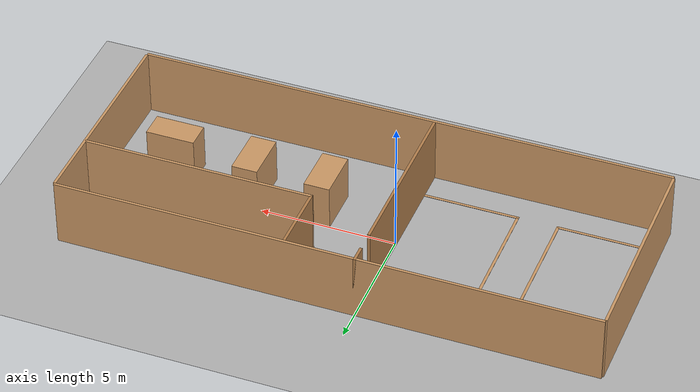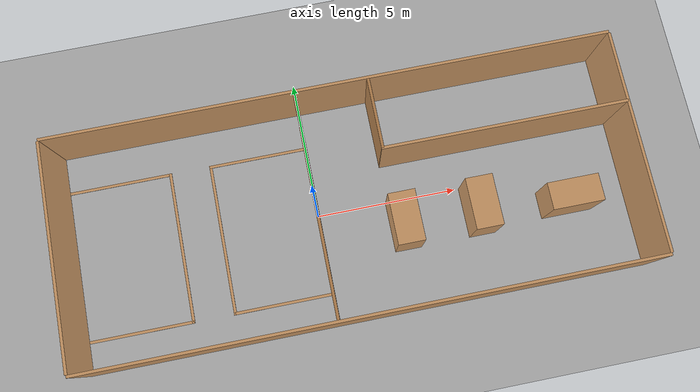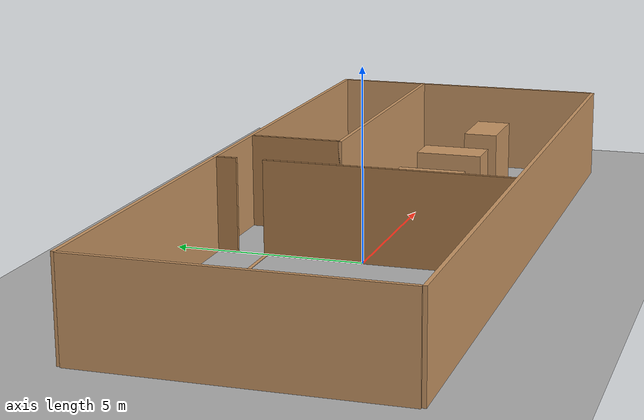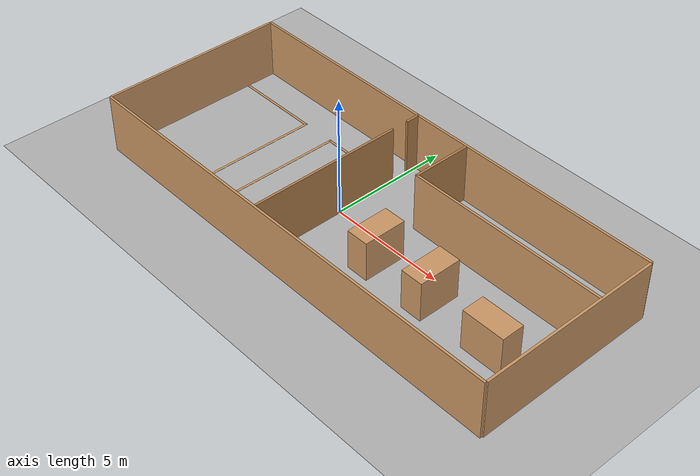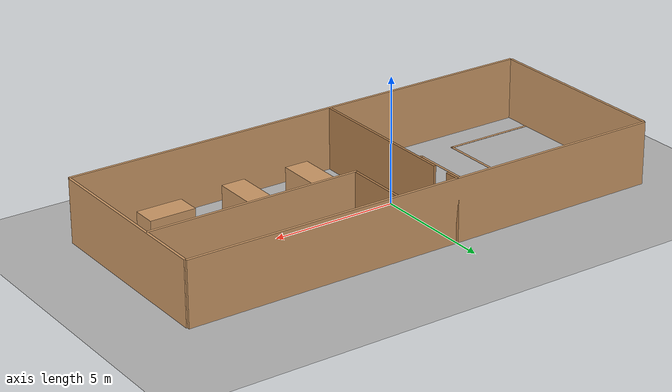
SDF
<sdf version="1.10">
 <world name="house_floor_plan">
  <physics name="1ms" type="ignored">
   <max_step_size>0.001</max_step_size>
   <real_time_factor>1</real_time_factor>
   <real_time_update_rate>1000</real_time_update_rate>
  </physics>
  <plugin name="gz::sim::systems::Physics" filename="gz-sim-physics-system"/>
  <plugin name="gz::sim::systems::UserCommands" filename="gz-sim-user-commands-system"/>
  <plugin name="gz::sim::systems::SceneBroadcaster" filename="gz-sim-scene-broadcaster-system"/>
  <plugin name="gz::sim::systems::Sensors" filename="gz-sim-sensors-system">
   <render_engine>ogre2</render_engine>
  </plugin>
  <scene>
   <ambient>0.400000006 0.400000006 0.400000006 1</ambient>
   <background>0.699999988 0.699999988 0.699999988 1</background>
   <shadows>true</shadows>
  </scene>
  <gravity>0 0 -9.8000000000000007</gravity>
  <magnetic_field>5.5644999999999998e-06 2.2875799999999999e-05 -4.2388400000000002e-05</magnetic_field>
  <atmosphere type="adiabatic"/>
  <model name="ground_plane">
   <static>true</static>
   <link name="link">
    <collision name="collision">
     <geometry><plane><normal>0 0 1</normal><size>100 100</size></plane></geometry>
     <surface><friction><ode><mu>100</mu><mu2>50</mu2></ode></friction></surface>
    </collision>
    <visual name="visual">
     <cast_shadows>false</cast_shadows>
     <geometry><plane><normal>0 0 1</normal><size>100 100</size></plane></geometry>
     <material>
      <ambient>0.300000012 0.300000012 0.300000012 1</ambient>
      <diffuse>0.699999988 0.699999988 0.699999988 1</diffuse>
      <specular>0.00999999978 0.00999999978 0.00999999978 1</specular>
     </material>
    </visual>
    <inertial>
     <mass>1</mass>
     <inertia><ixx>1</ixx><ixy>0</ixy><ixz>0</ixz><iyy>1</iyy><iyz>0</iyz><izz>1</izz></inertia>
    </inertial>
   </link>
  </model>
  <model name="wall_left">
   <static>true</static>
   <pose>-8.6999999999999993 0 1.25 0 0 0</pose>
   <link name="link">
    <collision name="collision">
     <geometry><box><size>0.10000000000000001 7.75 2.5</size></box></geometry>
    </collision>
    <visual name="visual">
     <geometry><box><size>0.10000000000000001 7.75 2.5</size></box></geometry>
     <material>
      <ambient>0.800000012 0.600000024 0.400000006 1</ambient>
      <diffuse>0.800000012 0.600000024 0.400000006 1</diffuse>
      <specular>0.100000001 0.100000001 0.100000001 1</specular>
     </material>
    </visual>
    <inertial>
     <mass>1</mass>
     <inertia><ixx>1</ixx><ixy>0</ixy><ixz>0</ixz><iyy>1</iyy><iyz>0</iyz><izz>1</izz></inertia>
    </inertial>
   </link>
  </model>
  <model name="wall_right">
   <static>true</static>
   <pose>11 0 1.25 0 0 0</pose>
   <link name="link">
    <collision name="collision">
     <geometry><box><size>0.10000000000000001 7.75 2.5</size></box></geometry>
    </collision>
    <visual name="visual">
     <geometry><box><size>0.10000000000000001 7.75 2.5</size></box></geometry>
     <material>
      <ambient>0.800000012 0.600000024 0.400000006 1</ambient>
      <diffuse>0.800000012 0.600000024 0.400000006 1</diffuse>
      <specular>0.100000001 0.100000001 0.100000001 1</specular>
     </material>
    </visual>
    <inertial>
     <mass>1</mass>
     <inertia><ixx>1</ixx><ixy>0</ixy><ixz>0</ixz><iyy>1</iyy><iyz>0</iyz><izz>1</izz></inertia>
    </inertial>
   </link>
  </model>
  <model name="wall_top">
   <static>true</static>
   <pose>1.1499999999999999 3.9249999999999998 1.25 0 0 0</pose>
   <link name="link">
    <collision name="collision">
     <geometry><box><size>19.699999999999999 0.10000000000000001 2.5</size></box></geometry>
    </collision>
    <visual name="visual">
     <geometry><box><size>19.699999999999999 0.10000000000000001 2.5</size></box></geometry>
     <material>
      <ambient>0.800000012 0.600000024 0.400000006 1</ambient>
      <diffuse>0.800000012 0.600000024 0.400000006 1</diffuse>
      <specular>0.100000001 0.100000001 0.100000001 1</specular>
     </material>
    </visual>
    <inertial>
     <mass>1</mass>
     <inertia><ixx>1</ixx><ixy>0</ixy><ixz>0</ixz><iyy>1</iyy><iyz>0</iyz><izz>1</izz></inertia>
    </inertial>
   </link>
  </model>
  <model name="wall_bottom">
   <static>true</static>
   <pose>1.1499999999999999 -3.9249999999999998 1.25 0 0 0</pose>
   <link name="link">
    <collision name="collision">
     <geometry><box><size>19.699999999999999 0.10000000000000001 2.5</size></box></geometry>
    </collision>
    <visual name="visual">
     <geometry><box><size>19.699999999999999 0.10000000000000001 2.5</size></box></geometry>
     <material>
      <ambient>0.800000012 0.600000024 0.400000006 1</ambient>
      <diffuse>0.800000012 0.600000024 0.400000006 1</diffuse>
      <specular>0.100000001 0.100000001 0.100000001 1</specular>
     </material>
    </visual>
    <inertial>
     <mass>1</mass>
     <inertia><ixx>1</ixx><ixy>0</ixy><ixz>0</ixz><iyy>1</iyy><iyz>0</iyz><izz>1</izz></inertia>
    </inertial>
   </link>
  </model>
  <model name="wall_between_lecture_meeting">
   <static>true</static>
   <pose>0 3.6575000000000002 1.25 0 0 0</pose>
   <link name="link">
    <collision name="collision">
     <geometry><box><size>0.10000000000000001 0.63500000000000001 2.5</size></box></geometry>
    </collision>
    <visual name="visual">
     <geometry><box><size>0.10000000000000001 0.63500000000000001 2.5</size></box></geometry>
     <material>
      <ambient>0.699999988 0.5 0.300000012 1</ambient>
      <diffuse>0.699999988 0.5 0.300000012 1</diffuse>
      <specular>0.100000001 0.100000001 0.100000001 1</specular>
     </material>
    </visual>
    <inertial>
     <mass>1</mass>
     <inertia><ixx>1</ixx><ixy>0</ixy><ixz>0</ixz><iyy>1</iyy><iyz>0</iyz><izz>1</izz></inertia>
    </inertial>
   </link>
  </model>
  <model name="wall_between_lecture_meeting_bottom">
   <static>true</static>
   <pose>0 -0.625 1.25 0 0 0</pose>
   <link name="link">
    <collision name="collision">
     <geometry><box><size>0.10000000000000001 6.5 2.5</size></box></geometry>
    </collision>
    <visual name="visual">
     <geometry><box><size>0.10000000000000001 6.5 2.5</size></box></geometry>
     <material>
      <ambient>0.699999988 0.5 0.300000012 1</ambient>
      <diffuse>0.699999988 0.5 0.300000012 1</diffuse>
      <specular>0.100000001 0.100000001 0.100000001 1</specular>
     </material>
    </visual>
    <inertial>
     <mass>1</mass>
     <inertia><ixx>1</ixx><ixy>0</ixy><ixz>0</ixz><iyy>1</iyy><iyz>0</iyz><izz>1</izz></inertia>
    </inertial>
   </link>
  </model>
  <model name="wall_between_meeting_storage">
   <static>true</static>
   <pose>2.5499999999999998 2.6400000000000001 1.25 0 0 0</pose>
   <link name="link">
    <collision name="collision">
     <geometry><box><size>0.10000000000000001 2.48 2.5</size></box></geometry>
    </collision>
    <visual name="visual">
     <geometry><box><size>0.10000000000000001 2.48 2.5</size></box></geometry>
     <material>
      <ambient>0.699999988 0.5 0.300000012 1</ambient>
      <diffuse>0.699999988 0.5 0.300000012 1</diffuse>
      <specular>0.100000001 0.100000001 0.100000001 1</specular>
     </material>
    </visual>
    <inertial>
     <mass>1</mass>
     <inertia><ixx>1</ixx><ixy>0</ixy><ixz>0</ixz><iyy>1</iyy><iyz>0</iyz><izz>1</izz></inertia>
    </inertial>
   </link>
  </model>
  <model name="wall_lecmet">
   <static>true</static>
   <pose>6.75 1.3999999999999999 1.25 0 0 0</pose>
   <link name="link">
    <collision name="collision">
     <geometry><box><size>8.5 0.10000000000000001 2.5</size></box></geometry>
    </collision>
    <visual name="visual">
     <geometry><box><size>8.5 0.10000000000000001 2.5</size></box></geometry>
     <material>
      <ambient>0.800000012 0.600000024 0.400000006 1</ambient>
      <diffuse>0.800000012 0.600000024 0.400000006 1</diffuse>
      <specular>0.100000001 0.100000001 0.100000001 1</specular>
     </material>
    </visual>
    <inertial>
     <mass>1</mass>
     <inertia><ixx>1</ixx><ixy>0</ixy><ixz>0</ixz><iyy>1</iyy><iyz>0</iyz><izz>1</izz></inertia>
    </inertial>
   </link>
  </model>
  <model name="road_left">
   <static>true</static>
   <pose>-4.9900000000000002 -0.125 0 0 0 0</pose>
   <link name="link">
    <collision name="collision">
     <geometry><box><size>0.10000000000000001 5.5 0.01</size></box></geometry>
    </collision>
    <visual name="visual">
     <geometry><box><size>0.10000000000000001 5.5 0.01</size></box></geometry>
     <material>
      <ambient>0.800000012 0.600000024 0.400000006 1</ambient>
      <diffuse>0.800000012 0.600000024 0.400000006 1</diffuse>
      <specular>0.100000001 0.100000001 0.100000001 1</specular>
     </material>
    </visual>
    <inertial>
     <mass>1</mass>
     <inertia><ixx>1</ixx><ixy>0</ixy><ixz>0</ixz><iyy>1</iyy><iyz>0</iyz><izz>1</izz></inertia>
    </inertial>
   </link>
  </model>
  <model name="desk_top_left">
   <static>true</static>
   <pose>-6.7949999999999999 2.5750000000000002 0 0 0 0</pose>
   <link name="link">
    <collision name="collision">
     <geometry><box><size>3.71 0.10000000000000001 0.01</size></box></geometry>
    </collision>
    <visual name="visual">
     <geometry><box><size>3.71 0.10000000000000001 0.01</size></box></geometry>
     <material>
      <ambient>0.800000012 0.600000024 0.400000006 1</ambient>
      <diffuse>0.800000012 0.600000024 0.400000006 1</diffuse>
      <specular>0.100000001 0.100000001 0.100000001 1</specular>
     </material>
    </visual>
    <inertial>
     <mass>1</mass>
     <inertia><ixx>1</ixx><ixy>0</ixy><ixz>0</ixz><iyy>1</iyy><iyz>0</iyz><izz>1</izz></inertia>
    </inertial>
   </link>
  </model>
  <model name="desk_bottom_left">
   <static>true</static>
   <pose>-6.7949999999999999 -2.8250000000000002 0 0 0 0</pose>
   <link name="link">
    <collision name="collision">
     <geometry><box><size>3.71 0.10000000000000001 0.01</size></box></geometry>
    </collision>
    <visual name="visual">
     <geometry><box><size>3.71 0.10000000000000001 0.01</size></box></geometry>
     <material>
      <ambient>0.800000012 0.600000024 0.400000006 1</ambient>
      <diffuse>0.800000012 0.600000024 0.400000006 1</diffuse>
      <specular>0.100000001 0.100000001 0.100000001 1</specular>
     </material>
    </visual>
    <inertial>
     <mass>1</mass>
     <inertia><ixx>1</ixx><ixy>0</ixy><ixz>0</ixz><iyy>1</iyy><iyz>0</iyz><izz>1</izz></inertia>
    </inertial>
   </link>
  </model>
  <model name="road_right">
   <static>true</static>
   <pose>-3.5099999999999998 -0.125 0 0 0 0</pose>
   <link name="link">
    <collision name="collision">
     <geometry><box><size>0.10000000000000001 5.5 0.01</size></box></geometry>
    </collision>
    <visual name="visual">
     <geometry><box><size>0.10000000000000001 5.5 0.01</size></box></geometry>
     <material>
      <ambient>0.800000012 0.600000024 0.400000006 1</ambient>
      <diffuse>0.800000012 0.600000024 0.400000006 1</diffuse>
      <specular>0.100000001 0.100000001 0.100000001 1</specular>
     </material>
    </visual>
    <inertial>
     <mass>1</mass>
     <inertia><ixx>1</ixx><ixy>0</ixy><ixz>0</ixz><iyy>1</iyy><iyz>0</iyz><izz>1</izz></inertia>
    </inertial>
   </link>
  </model>
  <model name="desk_top_right">
   <static>true</static>
   <pose>-1.7549999999999999 2.5750000000000002 0 0 0 0</pose>
   <link name="link">
    <collision name="collision">
     <geometry><box><size>3.6000000000000001 0.10000000000000001 0.01</size></box></geometry>
    </collision>
    <visual name="visual">
     <geometry><box><size>3.6099999999999999 0.10000000000000001 0.01</size></box></geometry>
     <material>
      <ambient>0.800000012 0.600000024 0.400000006 1</ambient>
      <diffuse>0.800000012 0.600000024 0.400000006 1</diffuse>
      <specular>0.100000001 0.100000001 0.100000001 1</specular>
     </material>
    </visual>
    <inertial>
     <mass>1</mass>
     <inertia><ixx>1</ixx><ixy>0</ixy><ixz>0</ixz><iyy>1</iyy><iyz>0</iyz><izz>1</izz></inertia>
    </inertial>
   </link>
  </model>
  <model name="desk_bottom_right">
   <static>true</static>
   <pose>-1.7549999999999999 -2.8250000000000002 0 0 0 0</pose>
   <link name="link">
    <collision name="collision">
     <geometry><box><size>3.6000000000000001 0.10000000000000001 0.01</size></box></geometry>
    </collision>
    <visual name="visual">
     <geometry><box><size>3.6000000000000001 0.10000000000000001 0.01</size></box></geometry>
     <material>
      <ambient>0.800000012 0.600000024 0.400000006 1</ambient>
      <diffuse>0.800000012 0.600000024 0.400000006 1</diffuse>
      <specular>0.100000001 0.100000001 0.100000001 1</specular>
     </material>
    </visual>
    <inertial>
     <mass>1</mass>
     <inertia><ixx>1</ixx><ixy>0</ixy><ixz>0</ixz><iyy>1</iyy><iyz>0</iyz><izz>1</izz></inertia>
    </inertial>
   </link>
  </model>
  <model name="box3">
   <static>true</static>
   <pose>2.9249999999999998 -0.90000000000000002 0.84999999999999998 0 0 0</pose>
   <link name="link">
    <collision name="collision">
     <geometry><box><size>0.94999999999999996 1.8 1.7</size></box></geometry>
    </collision>
    <visual name="visual">
     <geometry><box><size>0.94999999999999996 1.8 1.7</size></box></geometry>
     <material>
      <ambient>0.800000012 0.600000024 0.400000006 1</ambient>
      <diffuse>0.800000012 0.600000024 0.400000006 1</diffuse>
      <specular>0.100000001 0.100000001 0.100000001 1</specular>
     </material>
    </visual>
    <inertial>
     <mass>1</mass>
     <inertia><ixx>1</ixx><ixy>0</ixy><ixz>0</ixz><iyy>1</iyy><iyz>0</iyz><izz>1</izz></inertia>
    </inertial>
   </link>
  </model>
  <model name="box2">
   <static>true</static>
   <pose>5.625 -0.90000000000000002 0.84999999999999998 0 0 0</pose>
   <link name="link">
    <collision name="collision">
     <geometry><box><size>0.94999999999999996 1.8 1.7</size></box></geometry>
    </collision>
    <visual name="visual">
     <geometry><box><size>0.94999999999999996 1.8 1.7</size></box></geometry>
     <material>
      <ambient>0.800000012 0.600000024 0.400000006 1</ambient>
      <diffuse>0.800000012 0.600000024 0.400000006 1</diffuse>
      <specular>0.100000001 0.100000001 0.100000001 1</specular>
     </material>
    </visual>
    <inertial>
     <mass>1</mass>
     <inertia><ixx>1</ixx><ixy>0</ixy><ixz>0</ixz><iyy>1</iyy><iyz>0</iyz><izz>1</izz></inertia>
    </inertial>
   </link>
  </model>
  <model name="box1">
   <static>true</static>
   <pose>8.75 -1.175 0.84999999999999998 0 0 0</pose>
   <link name="link">
    <collision name="collision">
     <geometry><box><size>1.8 0.94999999999999996 1.7</size></box></geometry>
    </collision>
    <visual name="visual">
     <geometry><box><size>1.8 0.94999999999999996 1.7</size></box></geometry>
     <material>
      <ambient>0.800000012 0.600000024 0.400000006 1</ambient>
      <diffuse>0.800000012 0.600000024 0.400000006 1</diffuse>
      <specular>0.100000001 0.100000001 0.100000001 1</specular>
     </material>
    </visual>
    <inertial>
     <mass>1</mass>
     <inertia><ixx>1</ixx><ixy>0</ixy><ixz>0</ixz><iyy>1</iyy><iyz>0</iyz><izz>1</izz></inertia>
    </inertial>
   </link>
  </model>
  <light name="sun" type="directional">
   <pose>0 0 10 0 0 0</pose>
   <intensity>1</intensity>
   <direction>-0.5 0.10000000000000001 -0.90000000000000002</direction>
   <diffuse>0.800000012 0.800000012 0.800000012 1</diffuse>
   <specular>0.200000003 0.200000003 0.200000003 1</specular>
   <attenuation>
    <range>1000</range>
    <linear>0.01</linear>
    <constant>0.90000000000000002</constant>
    <quadratic>0.001</quadratic>
   </attenuation>
   <spot><inner_angle>0</inner_angle><outer_angle>0</outer_angle><falloff>0</falloff></spot>
  </light>
 </world>
</sdf>
